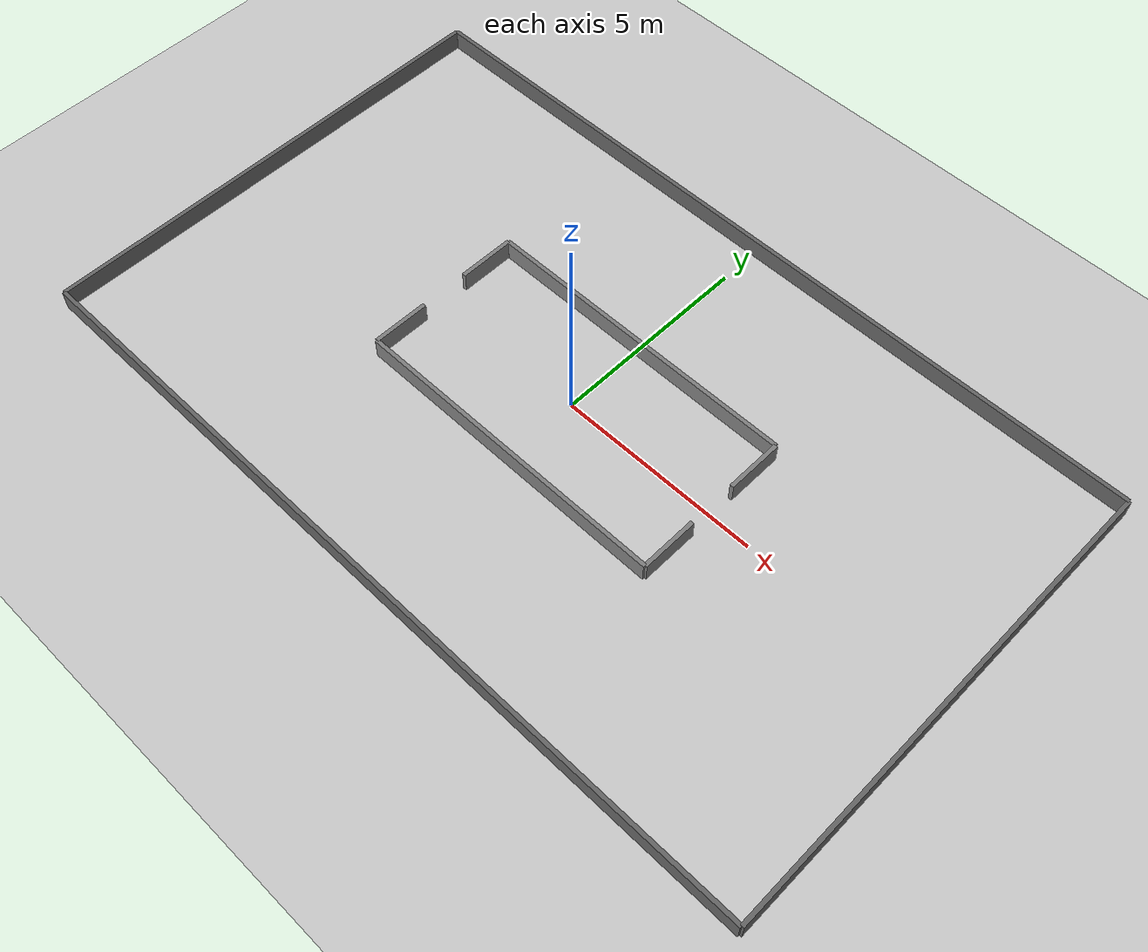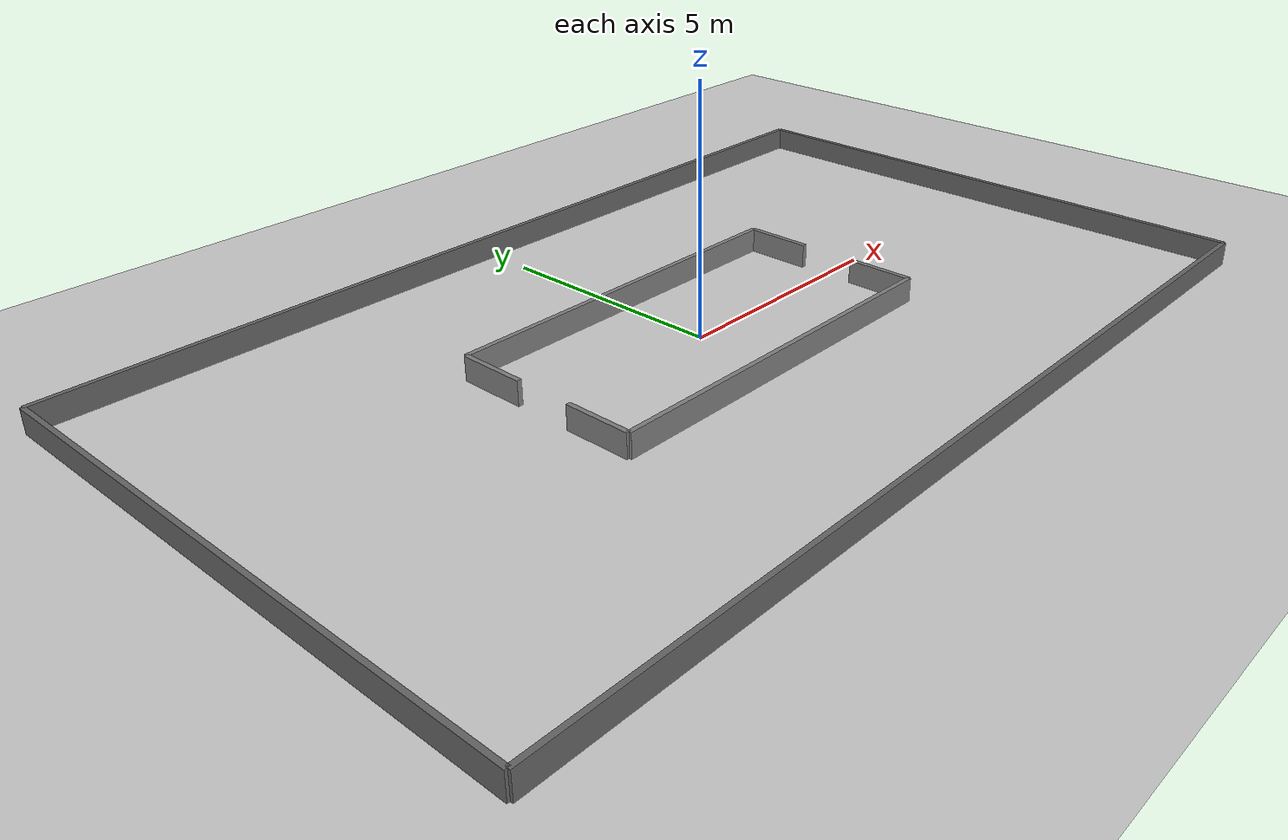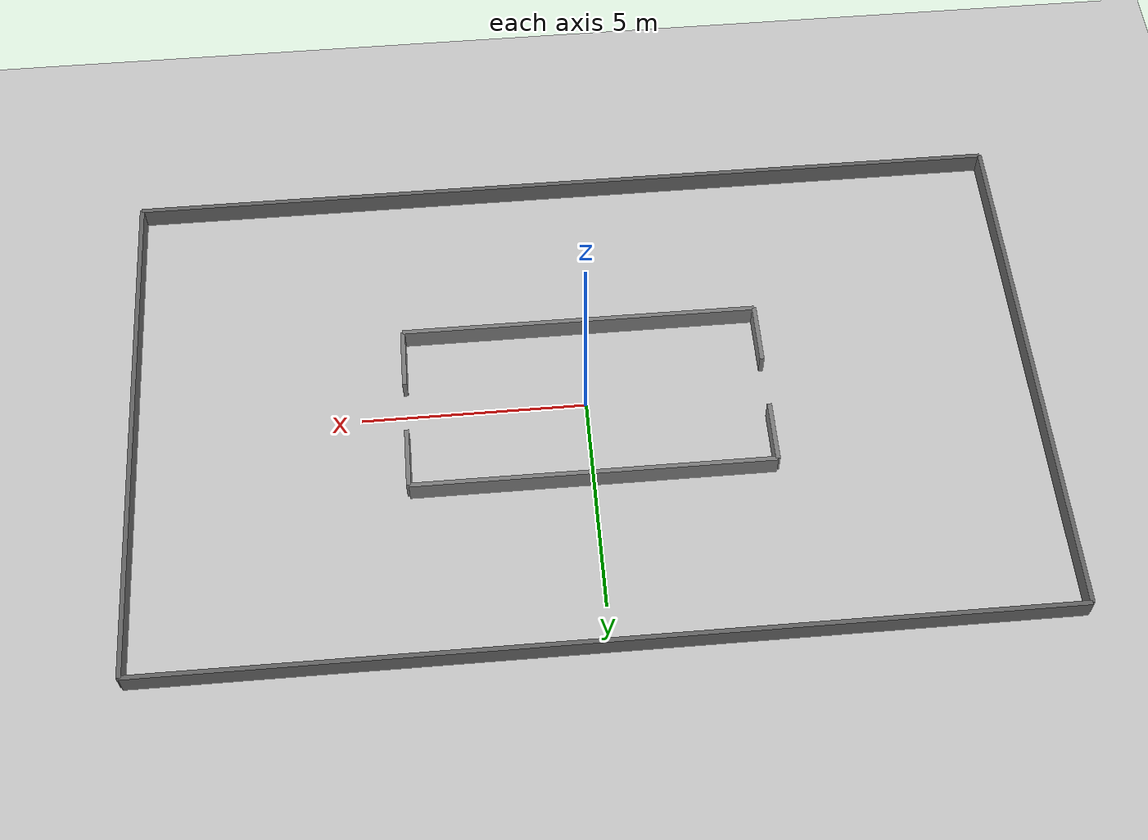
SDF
<sdf version="1.7">
  <world name="oscillation">
    <physics name="1ms" type="ignored">
      <max_step_size>0.001</max_step_size>
      <real_time_factor>1.0</real_time_factor>
    </physics>

    <plugin filename="gz-sim-physics-system" name="gz::sim::systems::Physics"/>
    <plugin filename="gz-sim-user-commands-system" name="gz::sim::systems::UserCommands"/>
    <plugin filename="gz-sim-scene-broadcaster-system" name="gz::sim::systems::SceneBroadcaster"/>
    <plugin filename="gz-sim-sensors-system" name="gz::sim::systems::Sensors">
      <render_engine>ogre2</render_engine>
    </plugin>

    <light type="directional" name="sun">
      <cast_shadows>true</cast_shadows>
      <pose>0 0 10 0 0 0</pose>
      <diffuse>0.8 0.8 0.8 1</diffuse>
      <specular>0.2 0.2 0.2 1</specular>
      <attenuation>
        <range>1000</range>
        <constant>0.9</constant>
        <linear>0.01</linear>
        <quadratic>0.001</quadratic>
      </attenuation>
      <direction>-0.5 0.1 -0.9</direction>
    </light>

    <model name="ground_plane">
      <static>true</static>
      <link name="link">
        <collision name="collision">
          <geometry><plane><normal>0 0 1</normal><size>100 100</size></plane></geometry>
        </collision>
        <visual name="visual">
          <geometry><plane><normal>0 0 1</normal><size>100 100</size></plane></geometry>
          <material>
            <ambient>0.8 0.8 0.8 1</ambient>
            <diffuse>0.8 0.8 0.8 1</diffuse>
            <specular>0.2 0.2 0.2 1</specular>
          </material>
        </visual>
      </link>
    </model>

    <!-- Wall macro is not available in plain SDF; walls are explicit boxes
         (size = L W H, thickness 0.1 m, height 0.5 m). -->

    <!-- Central chamber: full north/south walls (x in [-4,4]) -->
    <model name="chamber_north"><static>true</static><pose>0 2 0.25 0 0 0</pose>
      <link name="link">
        <collision name="c"><geometry><box><size>8 0.1 0.5</size></box></geometry></collision>
        <visual name="v"><geometry><box><size>8 0.1 0.5</size></box></geometry>
          <material><ambient>0.3 0.3 0.3 1</ambient><diffuse>0.5 0.5 0.5 1</diffuse></material></visual>
      </link>
    </model>
    <model name="chamber_south"><static>true</static><pose>0 -2 0.25 0 0 0</pose>
      <link name="link">
        <collision name="c"><geometry><box><size>8 0.1 0.5</size></box></geometry></collision>
        <visual name="v"><geometry><box><size>8 0.1 0.5</size></box></geometry>
          <material><ambient>0.3 0.3 0.3 1</ambient><diffuse>0.5 0.5 0.5 1</diffuse></material></visual>
      </link>
    </model>

    <!-- West wall at x=-4 with a 1.2 m gap centred on y=0 (left opening) -->
    <model name="west_upper"><static>true</static><pose>-4 1.3 0.25 0 0 0</pose>
      <link name="link">
        <collision name="c"><geometry><box><size>0.1 1.4 0.5</size></box></geometry></collision>
        <visual name="v"><geometry><box><size>0.1 1.4 0.5</size></box></geometry>
          <material><ambient>0.3 0.3 0.3 1</ambient><diffuse>0.5 0.5 0.5 1</diffuse></material></visual>
      </link>
    </model>
    <model name="west_lower"><static>true</static><pose>-4 -1.3 0.25 0 0 0</pose>
      <link name="link">
        <collision name="c"><geometry><box><size>0.1 1.4 0.5</size></box></geometry></collision>
        <visual name="v"><geometry><box><size>0.1 1.4 0.5</size></box></geometry>
          <material><ambient>0.3 0.3 0.3 1</ambient><diffuse>0.5 0.5 0.5 1</diffuse></material></visual>
      </link>
    </model>

    <!-- East wall at x=+4 with a symmetric 1.2 m gap (right opening) -->
    <model name="east_upper"><static>true</static><pose>4 1.3 0.25 0 0 0</pose>
      <link name="link">
        <collision name="c"><geometry><box><size>0.1 1.4 0.5</size></box></geometry></collision>
        <visual name="v"><geometry><box><size>0.1 1.4 0.5</size></box></geometry>
          <material><ambient>0.3 0.3 0.3 1</ambient><diffuse>0.5 0.5 0.5 1</diffuse></material></visual>
      </link>
    </model>
    <model name="east_lower"><static>true</static><pose>4 -1.3 0.25 0 0 0</pose>
      <link name="link">
        <collision name="c"><geometry><box><size>0.1 1.4 0.5</size></box></geometry></collision>
        <visual name="v"><geometry><box><size>0.1 1.4 0.5</size></box></geometry>
          <material><ambient>0.3 0.3 0.3 1</ambient><diffuse>0.5 0.5 0.5 1</diffuse></material></visual>
      </link>
    </model>

    <!-- Outer perimeter (x in [-10,10], y in [-6,6]) bounding both bays -->
    <model name="perim_north"><static>true</static><pose>0 6 0.25 0 0 0</pose>
      <link name="link">
        <collision name="c"><geometry><box><size>20 0.1 0.5</size></box></geometry></collision>
        <visual name="v"><geometry><box><size>20 0.1 0.5</size></box></geometry>
          <material><ambient>0.2 0.2 0.2 1</ambient><diffuse>0.4 0.4 0.4 1</diffuse></material></visual>
      </link>
    </model>
    <model name="perim_south"><static>true</static><pose>0 -6 0.25 0 0 0</pose>
      <link name="link">
        <collision name="c"><geometry><box><size>20 0.1 0.5</size></box></geometry></collision>
        <visual name="v"><geometry><box><size>20 0.1 0.5</size></box></geometry>
          <material><ambient>0.2 0.2 0.2 1</ambient><diffuse>0.4 0.4 0.4 1</diffuse></material></visual>
      </link>
    </model>
    <model name="perim_west"><static>true</static><pose>-10 0 0.25 0 0 0</pose>
      <link name="link">
        <collision name="c"><geometry><box><size>0.1 12 0.5</size></box></geometry></collision>
        <visual name="v"><geometry><box><size>0.1 12 0.5</size></box></geometry>
          <material><ambient>0.2 0.2 0.2 1</ambient><diffuse>0.4 0.4 0.4 1</diffuse></material></visual>
      </link>
    </model>
    <model name="perim_east"><static>true</static><pose>10 0 0.25 0 0 0</pose>
      <link name="link">
        <collision name="c"><geometry><box><size>0.1 12 0.5</size></box></geometry></collision>
        <visual name="v"><geometry><box><size>0.1 12 0.5</size></box></geometry>
          <material><ambient>0.2 0.2 0.2 1</ambient><diffuse>0.4 0.4 0.4 1</diffuse></material></visual>
      </link>
    </model>

    <gravity>0 0 -9.8</gravity>
    <scene>
      <ambient>0.4 0.4 0.4 1</ambient>
      <background>0.7 0.7 0.7 1</background>
      <shadows>true</shadows>
    </scene>
  </world>
</sdf>
